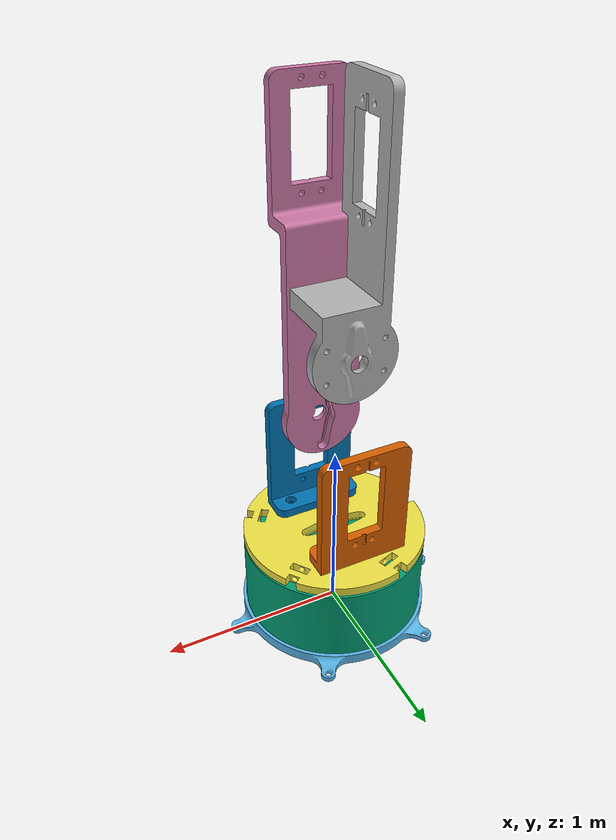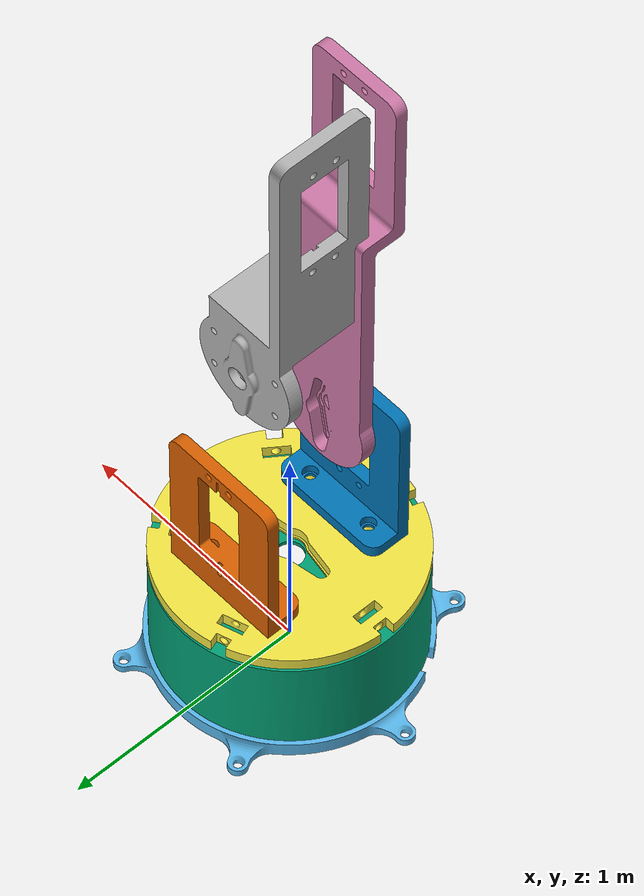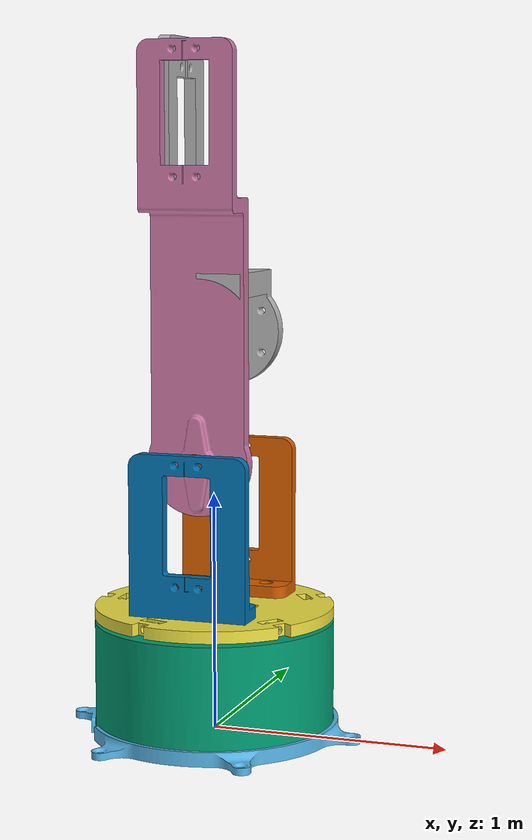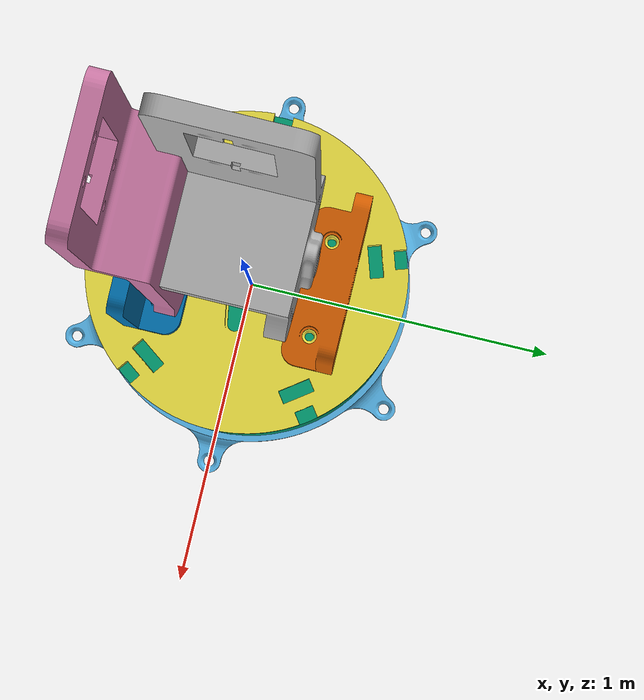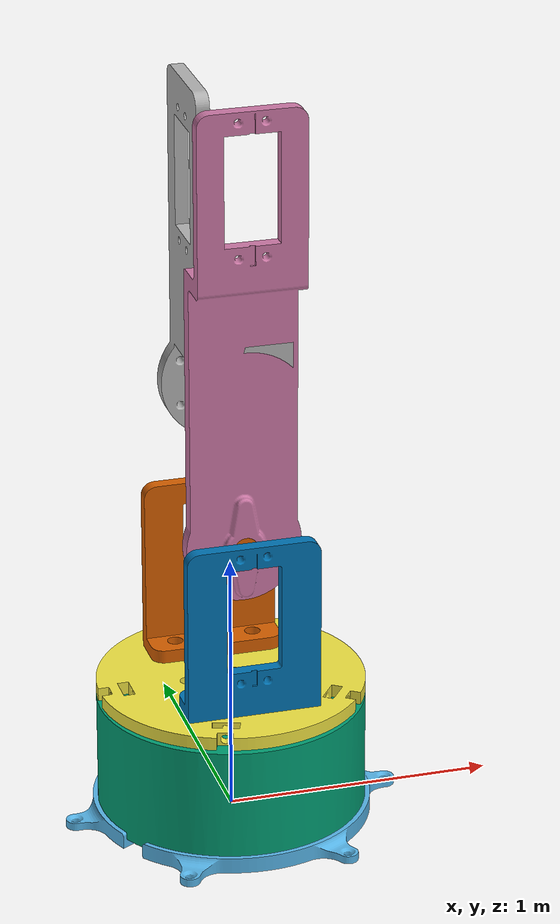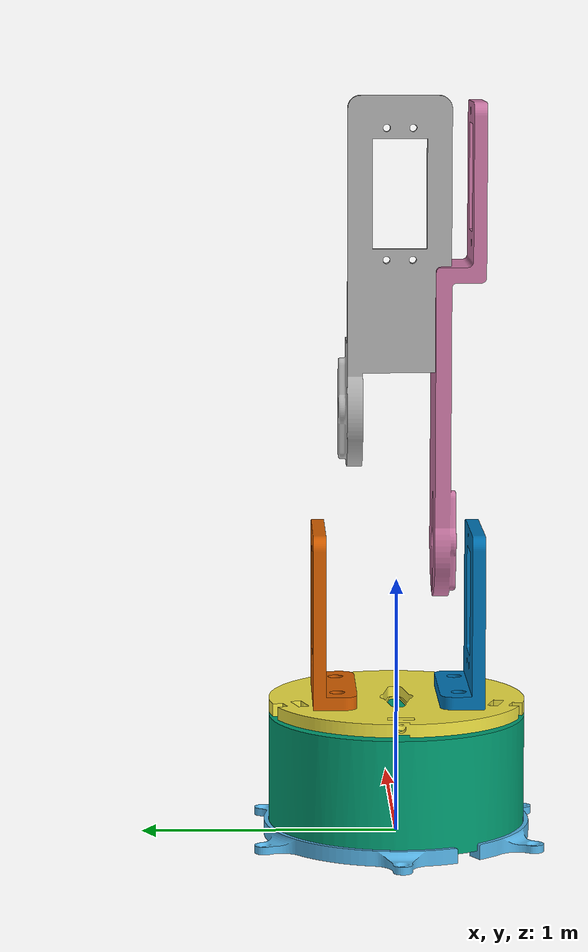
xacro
<?xml version="1.0"?>

<robot xmlns:xacro="http://www.ros.org/wiki/xacro" name="arduinobot"> <!-- Since we are using XACRO
    Model and not plain URDF, we need to indicate the definition of this format is located-->

    <xacro:property name="PI" value="3.14159" /> <!-- This xacro property helps to define values into
    variables and cane be reused as property values(it's same as setting values into variables and
    using the variables as input data) -->
    <xacro:property name="effort" value="30.0" />
    <xacro:property name="velocity" value="10.0" />

    <link name="world" />

    <link name="base_link">
        <visual>
            <origin rpy="0 0 0" xyz="0 0 0.47" /> <!--  rpy defines orientation and xyz defines
            position
            relative to link it belongs to(here it is base link)-->
            <geometry>
                <mesh filename="package://arduinobot_description/meshes/base-support.stl"
                    scale="0.01 0.01 0.01" />
            </geometry>
        </visual>
    </link>

    <joint name="virtual_joint" type="fixed"> <!-- this joint is not a proper joint of robot but just
        serve to attach the robot to the world and it of fixed type meaning this base link cannot
        move or translate w.r.t frame world-->
        <parent link="world" />
        <child link="base_link" />
        <origin rpy="0 0 0" xyz="0 0 0" />
    </joint>

    <link name="actual_base_link">
        <visual>
            <origin rpy="0 0 0" xyz="0 0 0.47" />
            <geometry>
                <mesh filename="package://arduinobot_description/meshes/base.stl"
                    scale="0.01 0.01 0.01" />
            </geometry>
        </visual>
    </link>

    <joint name="base_joint" type="fixed">
        <parent link="base_link" />
        <child link="actual_base_link" />
        <origin rpy="0 0 0" xyz="0 0 0" />
    </joint>

    <link name="rotative_base_link">
        <visual>
            <origin rpy="0 0 0" xyz="0 0 0" />
            <geometry>
                <mesh filename="package://arduinobot_description/meshes/rotative_base.stl"
                    scale="0.01 0.01 0.01" />
            </geometry>
        </visual>
    </link>

    <joint name="rotative_base_joint" type="revolute">
        <parent link="actual_base_link" />
        <child link="rotative_base_link" />
        <origin rpy="0 0 0" xyz="0 0 0.46" />
        <axis xyz="0 0 1" /> <!-- uesd  in revolute joints to specify axis of rotation in xyz
        direction-->
        <limit lower="-${PI/2}" upper="${PI/2}" effort="${effort}" velocity="${velocity}" />
    </joint>

    <link name="servo_support_link_1">
        <visual>
            <origin rpy="0 0 0" xyz="0 0 0" />
            <geometry>
                <mesh filename="package://arduinobot_description/meshes/servo-support.stl"
                    scale="0.01 0.01 0.01" />
            </geometry>
        </visual>
    </link>

    <joint name="servo_support_link_1_joint" type="fixed">
        <parent link="rotative_base_link" />
        <child link="servo_support_link_1" />
        <origin rpy="0 0 0" xyz="0 0 0" />
    </joint>

    <link name="servo_support_link_2">
        <visual>
            <origin rpy="0 0 3.14152" xyz="0 0 0" />
            <geometry>
                <mesh filename="package://arduinobot_description/meshes/servo-support.stl"
                    scale="0.01 0.01 0.01" />
            </geometry>
        </visual>
    </link>

    <joint name="servo_support_link_2_joint" type="fixed">
        <parent link="rotative_base_link" />
        <child link="servo_support_link_2" />
        <origin rpy="0 0 0" xyz="0 0 0" />
    </joint>

    <link name="arm_1_link">
        <visual>
            <origin rpy="0 0 0" xyz="0 0 0" />
            <geometry>
                <mesh filename="package://arduinobot_description/meshes/arm_1.stl"
                    scale="0.01 0.01 0.01" />
            </geometry>
        </visual>
    </link>

    <joint name="arm_1_joint" type="revolute">
        <parent link="servo_support_link_1" />
        <child link="arm_1_link" />
        <origin rpy="0 0 0" xyz="0 0 0.34" />
        <axis xyz="0 1 0" />
        <limit lower="-${PI/2}" upper="${PI/2}" effort="${effort}" velocity="${velocity}" />
    </joint>

    <link name="arm_2_link">
        <visual>
            <origin rpy="0 0 3.14152" xyz="0 0 -0.95" />
            <geometry>
                <mesh filename="package://arduinobot_description/meshes/arm_2.stl"
                    scale="0.01 0.01 0.01" />
            </geometry>
        </visual>
    </link>

    <joint name="arm_2_joint" type="revolute">
        <parent link="servo_support_link_2" />
        <child link="arm_2_link" />
        <origin rpy="0 0 0" xyz="0 0 0" />
        <axis xyz="0 1 0" />
        <limit lower="-${PI/2}" upper="${PI/2}" effort="${effort}" velocity="${velocity}" />
    </joint>

</robot>
